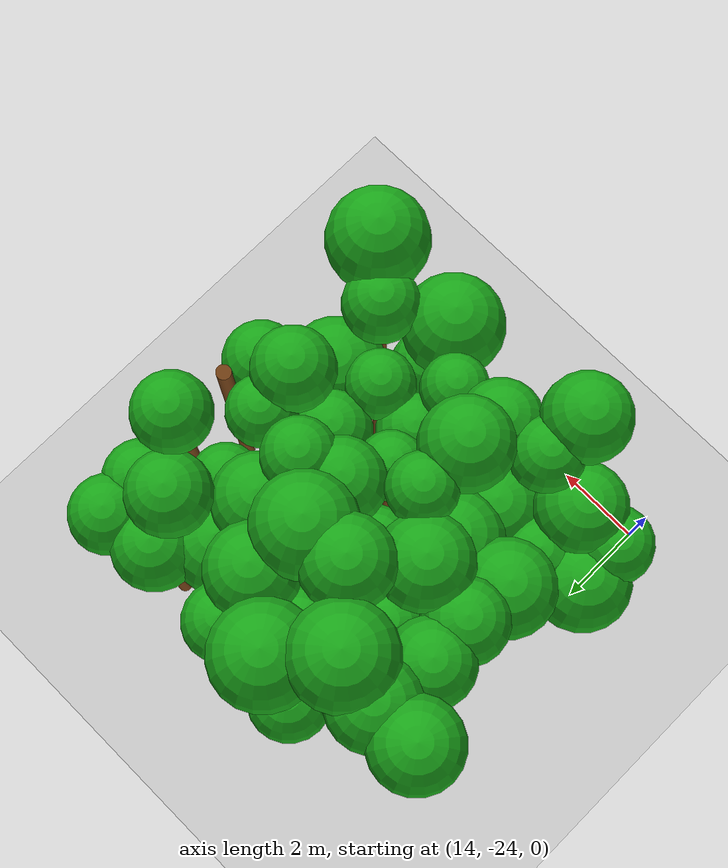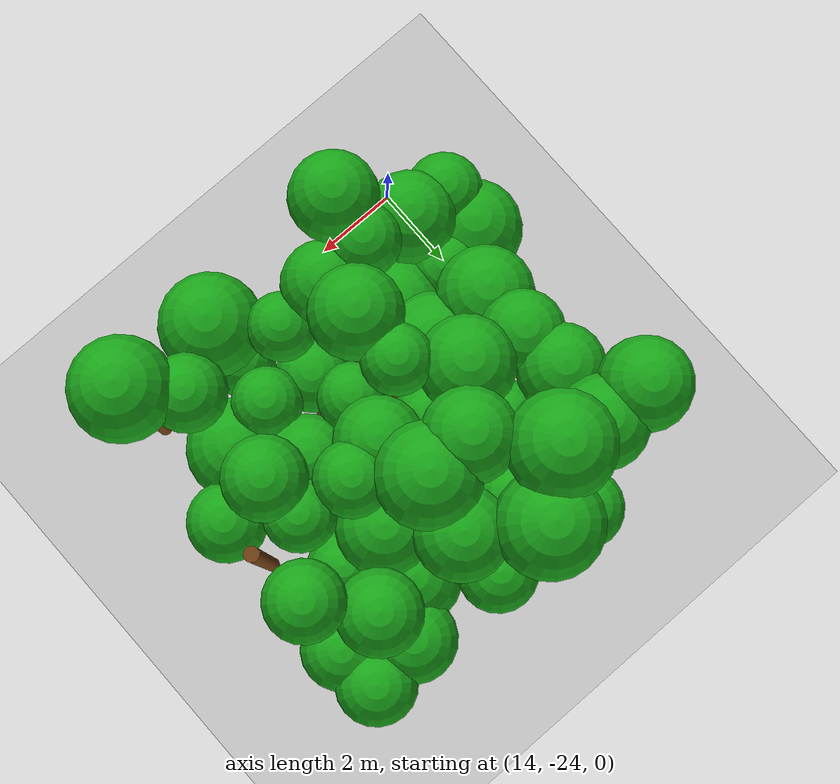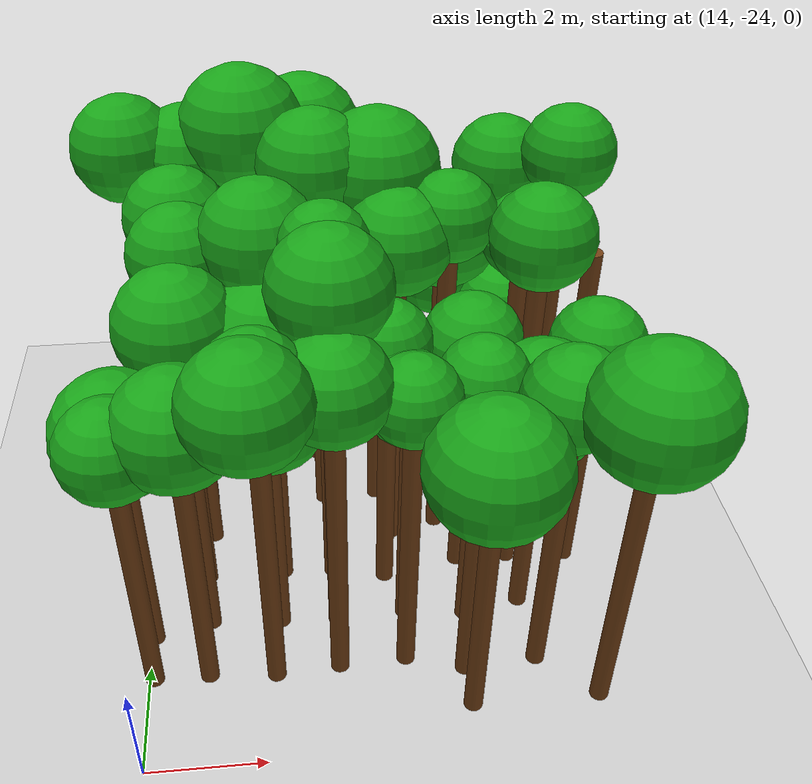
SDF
<sdf version="1.6">
 <world name="forest_world">
  <include><uri>model://sun</uri></include>
  <include><uri>model://ground_plane</uri></include>
  <model name="tree_2184_trunk">
   <static>true</static>
   <pose>14.08 -22.23 2.40 0 0 0</pose>
   <link name="link">
    <collision name="collision">
     <geometry><cylinder><radius>0.16</radius><length>4.79</length></cylinder></geometry>
    </collision>
    <visual name="visual">
     <geometry><cylinder><radius>0.16</radius><length>4.79</length></cylinder></geometry>
     <material><ambient>0.35 0.20 0.05 1</ambient><diffuse>0.45 0.25 0.08 1</diffuse></material>
    </visual>
   </link>
  </model>
  <model name="tree_2184_leaf">
   <static>true</static>
   <pose>14.08 -22.23 5.28 0 0 0</pose>
   <link name="link">
    <collision name="collision"><geometry><sphere><radius>0.81</radius></sphere></geometry></collision>
    <visual name="visual">
     <geometry><sphere><radius>0.81</radius></sphere></geometry>
     <material><ambient>0.05 0.45 0.05 1</ambient><diffuse>0.10 0.65 0.10 1</diffuse></material>
    </visual>
   </link>
  </model>
  <model name="tree_2185_trunk">
   <static>true</static>
   <pose>14.04 -21.34 2.10 0 0 0</pose>
   <link name="link">
    <collision name="collision">
     <geometry><cylinder><radius>0.16</radius><length>4.21</length></cylinder></geometry>
    </collision>
    <visual name="visual">
     <geometry><cylinder><radius>0.16</radius><length>4.21</length></cylinder></geometry>
     <material><ambient>0.35 0.20 0.05 1</ambient><diffuse>0.45 0.25 0.08 1</diffuse></material>
    </visual>
   </link>
  </model>
  <model name="tree_2185_leaf">
   <static>true</static>
   <pose>14.04 -21.34 4.82 0 0 0</pose>
   <link name="link">
    <collision name="collision"><geometry><sphere><radius>1.03</radius></sphere></geometry></collision>
    <visual name="visual">
     <geometry><sphere><radius>1.03</radius></sphere></geometry>
     <material><ambient>0.05 0.45 0.05 1</ambient><diffuse>0.10 0.65 0.10 1</diffuse></material>
    </visual>
   </link>
  </model>
  <model name="tree_2189_trunk">
   <static>true</static>
   <pose>14.11 -16.63 3.33 0 0 0</pose>
   <link name="link">
    <collision name="collision">
     <geometry><cylinder><radius>0.16</radius><length>6.65</length></cylinder></geometry>
    </collision>
    <visual name="visual">
     <geometry><cylinder><radius>0.16</radius><length>6.65</length></cylinder></geometry>
     <material><ambient>0.35 0.20 0.05 1</ambient><diffuse>0.45 0.25 0.08 1</diffuse></material>
    </visual>
   </link>
  </model>
  <model name="tree_2189_leaf">
   <static>true</static>
   <pose>14.11 -16.63 7.21 0 0 0</pose>
   <link name="link">
    <collision name="collision"><geometry><sphere><radius>0.93</radius></sphere></geometry></collision>
    <visual name="visual">
     <geometry><sphere><radius>0.93</radius></sphere></geometry>
     <material><ambient>0.05 0.45 0.05 1</ambient><diffuse>0.10 0.65 0.10 1</diffuse></material>
    </visual>
   </link>
  </model>
  <model name="tree_2239_trunk">
   <static>true</static>
   <pose>15.02 -22.23 2.52 0 0 0</pose>
   <link name="link">
    <collision name="collision">
     <geometry><cylinder><radius>0.16</radius><length>5.04</length></cylinder></geometry>
    </collision>
    <visual name="visual">
     <geometry><cylinder><radius>0.16</radius><length>5.04</length></cylinder></geometry>
     <material><ambient>0.35 0.20 0.05 1</ambient><diffuse>0.45 0.25 0.08 1</diffuse></material>
    </visual>
   </link>
  </model>
  <model name="tree_2239_leaf">
   <static>true</static>
   <pose>15.02 -22.23 5.61 0 0 0</pose>
   <link name="link">
    <collision name="collision"><geometry><sphere><radius>0.95</radius></sphere></geometry></collision>
    <visual name="visual">
     <geometry><sphere><radius>0.95</radius></sphere></geometry>
     <material><ambient>0.05 0.45 0.05 1</ambient><diffuse>0.10 0.65 0.10 1</diffuse></material>
    </visual>
   </link>
  </model>
  <model name="tree_2240_trunk">
   <static>true</static>
   <pose>15.04 -21.08 2.26 0 0 0</pose>
   <link name="link">
    <collision name="collision">
     <geometry><cylinder><radius>0.16</radius><length>4.52</length></cylinder></geometry>
    </collision>
    <visual name="visual">
     <geometry><cylinder><radius>0.16</radius><length>4.52</length></cylinder></geometry>
     <material><ambient>0.35 0.20 0.05 1</ambient><diffuse>0.45 0.25 0.08 1</diffuse></material>
    </visual>
   </link>
  </model>
  <model name="tree_2240_leaf">
   <static>true</static>
   <pose>15.04 -21.08 5.01 0 0 0</pose>
   <link name="link">
    <collision name="collision"><geometry><sphere><radius>0.81</radius></sphere></geometry></collision>
    <visual name="visual">
     <geometry><sphere><radius>0.81</radius></sphere></geometry>
     <material><ambient>0.05 0.45 0.05 1</ambient><diffuse>0.10 0.65 0.10 1</diffuse></material>
    </visual>
   </link>
  </model>
  <model name="tree_2241_trunk">
   <static>true</static>
   <pose>14.96 -20.02 2.61 0 0 0</pose>
   <link name="link">
    <collision name="collision">
     <geometry><cylinder><radius>0.16</radius><length>5.22</length></cylinder></geometry>
    </collision>
    <visual name="visual">
     <geometry><cylinder><radius>0.16</radius><length>5.22</length></cylinder></geometry>
     <material><ambient>0.35 0.20 0.05 1</ambient><diffuse>0.45 0.25 0.08 1</diffuse></material>
    </visual>
   </link>
  </model>
  <model name="tree_2241_leaf">
   <static>true</static>
   <pose>14.96 -20.02 5.82 0 0 0</pose>
   <link name="link">
    <collision name="collision"><geometry><sphere><radius>1.00</radius></sphere></geometry></collision>
    <visual name="visual">
     <geometry><sphere><radius>1.00</radius></sphere></geometry>
     <material><ambient>0.05 0.45 0.05 1</ambient><diffuse>0.10 0.65 0.10 1</diffuse></material>
    </visual>
   </link>
  </model>
  <model name="tree_2242_trunk">
   <static>true</static>
   <pose>15.05 -18.93 2.95 0 0 0</pose>
   <link name="link">
    <collision name="collision">
     <geometry><cylinder><radius>0.16</radius><length>5.90</length></cylinder></geometry>
    </collision>
    <visual name="visual">
     <geometry><cylinder><radius>0.16</radius><length>5.90</length></cylinder></geometry>
     <material><ambient>0.35 0.20 0.05 1</ambient><diffuse>0.45 0.25 0.08 1</diffuse></material>
    </visual>
   </link>
  </model>
  <model name="tree_2242_leaf">
   <static>true</static>
   <pose>15.05 -18.93 6.42 0 0 0</pose>
   <link name="link">
    <collision name="collision"><geometry><sphere><radius>0.87</radius></sphere></geometry></collision>
    <visual name="visual">
     <geometry><sphere><radius>0.87</radius></sphere></geometry>
     <material><ambient>0.05 0.45 0.05 1</ambient><diffuse>0.10 0.65 0.10 1</diffuse></material>
    </visual>
   </link>
  </model>
  <model name="tree_2243_trunk">
   <static>true</static>
   <pose>14.96 -17.92 3.01 0 0 0</pose>
   <link name="link">
    <collision name="collision">
     <geometry><cylinder><radius>0.16</radius><length>6.01</length></cylinder></geometry>
    </collision>
    <visual name="visual">
     <geometry><cylinder><radius>0.16</radius><length>6.01</length></cylinder></geometry>
     <material><ambient>0.35 0.20 0.05 1</ambient><diffuse>0.45 0.25 0.08 1</diffuse></material>
    </visual>
   </link>
  </model>
  <model name="tree_2243_leaf">
   <static>true</static>
   <pose>14.96 -17.92 6.54 0 0 0</pose>
   <link name="link">
    <collision name="collision"><geometry><sphere><radius>0.89</radius></sphere></geometry></collision>
    <visual name="visual">
     <geometry><sphere><radius>0.89</radius></sphere></geometry>
     <material><ambient>0.05 0.45 0.05 1</ambient><diffuse>0.10 0.65 0.10 1</diffuse></material>
    </visual>
   </link>
  </model>
  <model name="tree_2244_trunk">
   <static>true</static>
   <pose>15.16 -16.63 3.22 0 0 0</pose>
   <link name="link">
    <collision name="collision">
     <geometry><cylinder><radius>0.16</radius><length>6.44</length></cylinder></geometry>
    </collision>
    <visual name="visual">
     <geometry><cylinder><radius>0.16</radius><length>6.44</length></cylinder></geometry>
     <material><ambient>0.35 0.20 0.05 1</ambient><diffuse>0.45 0.25 0.08 1</diffuse></material>
    </visual>
   </link>
  </model>
  <model name="tree_2244_leaf">
   <static>true</static>
   <pose>15.16 -16.63 7.00 0 0 0</pose>
   <link name="link">
    <collision name="collision"><geometry><sphere><radius>0.94</radius></sphere></geometry></collision>
    <visual name="visual">
     <geometry><sphere><radius>0.94</radius></sphere></geometry>
     <material><ambient>0.05 0.45 0.05 1</ambient><diffuse>0.10 0.65 0.10 1</diffuse></material>
    </visual>
   </link>
  </model>
  <model name="tree_2293_leaf">
   <static>true</static>
   <pose>16.09 -23.28 6.79 0 0 0</pose>
   <link name="link">
    <collision name="collision"><geometry><sphere><radius>0.91</radius></sphere></geometry></collision>
    <visual name="visual">
     <geometry><sphere><radius>0.91</radius></sphere></geometry>
     <material><ambient>0.05 0.45 0.05 1</ambient><diffuse>0.10 0.65 0.10 1</diffuse></material>
    </visual>
   </link>
  </model>
  <model name="tree_2294_trunk">
   <static>true</static>
   <pose>16.17 -22.32 3.00 0 0 0</pose>
   <link name="link">
    <collision name="collision">
     <geometry><cylinder><radius>0.16</radius><length>5.99</length></cylinder></geometry>
    </collision>
    <visual name="visual">
     <geometry><cylinder><radius>0.16</radius><length>5.99</length></cylinder></geometry>
     <material><ambient>0.35 0.20 0.05 1</ambient><diffuse>0.45 0.25 0.08 1</diffuse></material>
    </visual>
   </link>
  </model>
  <model name="tree_2294_leaf">
   <static>true</static>
   <pose>16.17 -22.32 6.45 0 0 0</pose>
   <link name="link">
    <collision name="collision"><geometry><sphere><radius>0.76</radius></sphere></geometry></collision>
    <visual name="visual">
     <geometry><sphere><radius>0.76</radius></sphere></geometry>
     <material><ambient>0.05 0.45 0.05 1</ambient><diffuse>0.10 0.65 0.10 1</diffuse></material>
    </visual>
   </link>
  </model>
  <model name="tree_2295_trunk">
   <static>true</static>
   <pose>16.29 -21.16 2.17 0 0 0</pose>
   <link name="link">
    <collision name="collision">
     <geometry><cylinder><radius>0.16</radius><length>4.34</length></cylinder></geometry>
    </collision>
    <visual name="visual">
     <geometry><cylinder><radius>0.16</radius><length>4.34</length></cylinder></geometry>
     <material><ambient>0.35 0.20 0.05 1</ambient><diffuse>0.45 0.25 0.08 1</diffuse></material>
    </visual>
   </link>
  </model>
  <model name="tree_2295_leaf">
   <static>true</static>
   <pose>16.29 -21.16 4.94 0 0 0</pose>
   <link name="link">
    <collision name="collision"><geometry><sphere><radius>0.99</radius></sphere></geometry></collision>
    <visual name="visual">
     <geometry><sphere><radius>0.99</radius></sphere></geometry>
     <material><ambient>0.05 0.45 0.05 1</ambient><diffuse>0.10 0.65 0.10 1</diffuse></material>
    </visual>
   </link>
  </model>
  <model name="tree_2296_trunk">
   <static>true</static>
   <pose>16.38 -19.99 2.39 0 0 0</pose>
   <link name="link">
    <collision name="collision">
     <geometry><cylinder><radius>0.16</radius><length>4.78</length></cylinder></geometry>
    </collision>
    <visual name="visual">
     <geometry><cylinder><radius>0.16</radius><length>4.78</length></cylinder></geometry>
     <material><ambient>0.35 0.20 0.05 1</ambient><diffuse>0.45 0.25 0.08 1</diffuse></material>
    </visual>
   </link>
  </model>
  <model name="tree_2296_leaf">
   <static>true</static>
   <pose>16.38 -19.99 5.44 0 0 0</pose>
   <link name="link">
    <collision name="collision"><geometry><sphere><radius>1.10</radius></sphere></geometry></collision>
    <visual name="visual">
     <geometry><sphere><radius>1.10</radius></sphere></geometry>
     <material><ambient>0.05 0.45 0.05 1</ambient><diffuse>0.10 0.65 0.10 1</diffuse></material>
    </visual>
   </link>
  </model>
  <model name="tree_2297_trunk">
   <static>true</static>
   <pose>16.32 -19.14 3.11 0 0 0</pose>
   <link name="link">
    <collision name="collision">
     <geometry><cylinder><radius>0.16</radius><length>6.23</length></cylinder></geometry>
    </collision>
    <visual name="visual">
     <geometry><cylinder><radius>0.16</radius><length>6.23</length></cylinder></geometry>
     <material><ambient>0.35 0.20 0.05 1</ambient><diffuse>0.45 0.25 0.08 1</diffuse></material>
    </visual>
   </link>
  </model>
  <model name="tree_2297_leaf">
   <static>true</static>
   <pose>16.32 -19.14 6.81 0 0 0</pose>
   <link name="link">
    <collision name="collision"><geometry><sphere><radius>0.97</radius></sphere></geometry></collision>
    <visual name="visual">
     <geometry><sphere><radius>0.97</radius></sphere></geometry>
     <material><ambient>0.05 0.45 0.05 1</ambient><diffuse>0.10 0.65 0.10 1</diffuse></material>
    </visual>
   </link>
  </model>
  <model name="tree_2298_trunk">
   <static>true</static>
   <pose>16.19 -18.02 2.06 0 0 0</pose>
   <link name="link">
    <collision name="collision">
     <geometry><cylinder><radius>0.16</radius><length>4.12</length></cylinder></geometry>
    </collision>
    <visual name="visual">
     <geometry><cylinder><radius>0.16</radius><length>4.12</length></cylinder></geometry>
     <material><ambient>0.35 0.20 0.05 1</ambient><diffuse>0.45 0.25 0.08 1</diffuse></material>
    </visual>
   </link>
  </model>
  <model name="tree_2298_leaf">
   <static>true</static>
   <pose>16.19 -18.02 4.64 0 0 0</pose>
   <link name="link">
    <collision name="collision"><geometry><sphere><radius>0.85</radius></sphere></geometry></collision>
    <visual name="visual">
     <geometry><sphere><radius>0.85</radius></sphere></geometry>
     <material><ambient>0.05 0.45 0.05 1</ambient><diffuse>0.10 0.65 0.10 1</diffuse></material>
    </visual>
   </link>
  </model>
  <model name="tree_2299_trunk">
   <static>true</static>
   <pose>16.12 -16.80 3.48 0 0 0</pose>
   <link name="link">
    <collision name="collision">
     <geometry><cylinder><radius>0.16</radius><length>6.95</length></cylinder></geometry>
    </collision>
    <visual name="visual">
     <geometry><cylinder><radius>0.16</radius><length>6.95</length></cylinder></geometry>
     <material><ambient>0.35 0.20 0.05 1</ambient><diffuse>0.45 0.25 0.08 1</diffuse></material>
    </visual>
   </link>
  </model>
  <model name="tree_2299_leaf">
   <static>true</static>
   <pose>16.12 -16.80 7.59 0 0 0</pose>
   <link name="link">
    <collision name="collision"><geometry><sphere><radius>1.07</radius></sphere></geometry></collision>
    <visual name="visual">
     <geometry><sphere><radius>1.07</radius></sphere></geometry>
     <material><ambient>0.05 0.45 0.05 1</ambient><diffuse>0.10 0.65 0.10 1</diffuse></material>
    </visual>
   </link>
  </model>
  <model name="tree_2300_trunk">
   <static>true</static>
   <pose>16.36 -15.62 2.78 0 0 0</pose>
   <link name="link">
    <collision name="collision">
     <geometry><cylinder><radius>0.16</radius><length>5.55</length></cylinder></geometry>
    </collision>
    <visual name="visual">
     <geometry><cylinder><radius>0.16</radius><length>5.55</length></cylinder></geometry>
     <material><ambient>0.35 0.20 0.05 1</ambient><diffuse>0.45 0.25 0.08 1</diffuse></material>
    </visual>
   </link>
  </model>
  <model name="tree_2300_leaf">
   <static>true</static>
   <pose>16.36 -15.62 6.04 0 0 0</pose>
   <link name="link">
    <collision name="collision"><geometry><sphere><radius>0.81</radius></sphere></geometry></collision>
    <visual name="visual">
     <geometry><sphere><radius>0.81</radius></sphere></geometry>
     <material><ambient>0.05 0.45 0.05 1</ambient><diffuse>0.10 0.65 0.10 1</diffuse></material>
    </visual>
   </link>
  </model>
  <model name="tree_2349_trunk">
   <static>true</static>
   <pose>17.27 -22.23 2.82 0 0 0</pose>
   <link name="link">
    <collision name="collision">
     <geometry><cylinder><radius>0.16</radius><length>5.64</length></cylinder></geometry>
    </collision>
    <visual name="visual">
     <geometry><cylinder><radius>0.16</radius><length>5.64</length></cylinder></geometry>
     <material><ambient>0.35 0.20 0.05 1</ambient><diffuse>0.45 0.25 0.08 1</diffuse></material>
    </visual>
   </link>
  </model>
  <model name="tree_2349_leaf">
   <static>true</static>
   <pose>17.27 -22.23 6.16 0 0 0</pose>
   <link name="link">
    <collision name="collision"><geometry><sphere><radius>0.87</radius></sphere></geometry></collision>
    <visual name="visual">
     <geometry><sphere><radius>0.87</radius></sphere></geometry>
     <material><ambient>0.05 0.45 0.05 1</ambient><diffuse>0.10 0.65 0.10 1</diffuse></material>
    </visual>
   </link>
  </model>
  <model name="tree_2350_trunk">
   <static>true</static>
   <pose>17.30 -21.22 3.29 0 0 0</pose>
   <link name="link">
    <collision name="collision">
     <geometry><cylinder><radius>0.16</radius><length>6.58</length></cylinder></geometry>
    </collision>
    <visual name="visual">
     <geometry><cylinder><radius>0.16</radius><length>6.58</length></cylinder></geometry>
     <material><ambient>0.35 0.20 0.05 1</ambient><diffuse>0.45 0.25 0.08 1</diffuse></material>
    </visual>
   </link>
  </model>
  <model name="tree_2350_leaf">
   <static>true</static>
   <pose>17.30 -21.22 7.15 0 0 0</pose>
   <link name="link">
    <collision name="collision"><geometry><sphere><radius>0.94</radius></sphere></geometry></collision>
    <visual name="visual">
     <geometry><sphere><radius>0.94</radius></sphere></geometry>
     <material><ambient>0.05 0.45 0.05 1</ambient><diffuse>0.10 0.65 0.10 1</diffuse></material>
    </visual>
   </link>
  </model>
  <model name="tree_2351_trunk">
   <static>true</static>
   <pose>17.30 -20.04 3.34 0 0 0</pose>
   <link name="link">
    <collision name="collision">
     <geometry><cylinder><radius>0.16</radius><length>6.69</length></cylinder></geometry>
    </collision>
    <visual name="visual">
     <geometry><cylinder><radius>0.16</radius><length>6.69</length></cylinder></geometry>
     <material><ambient>0.35 0.20 0.05 1</ambient><diffuse>0.45 0.25 0.08 1</diffuse></material>
    </visual>
   </link>
  </model>
  <model name="tree_2351_leaf">
   <static>true</static>
   <pose>17.30 -20.04 7.12 0 0 0</pose>
   <link name="link">
    <collision name="collision"><geometry><sphere><radius>0.71</radius></sphere></geometry></collision>
    <visual name="visual">
     <geometry><sphere><radius>0.71</radius></sphere></geometry>
     <material><ambient>0.05 0.45 0.05 1</ambient><diffuse>0.10 0.65 0.10 1</diffuse></material>
    </visual>
   </link>
  </model>
  <model name="tree_2352_trunk">
   <static>true</static>
   <pose>17.37 -18.93 2.55 0 0 0</pose>
   <link name="link">
    <collision name="collision">
     <geometry><cylinder><radius>0.16</radius><length>5.11</length></cylinder></geometry>
    </collision>
    <visual name="visual">
     <geometry><cylinder><radius>0.16</radius><length>5.11</length></cylinder></geometry>
     <material><ambient>0.35 0.20 0.05 1</ambient><diffuse>0.45 0.25 0.08 1</diffuse></material>
    </visual>
   </link>
  </model>
  <model name="tree_2352_leaf">
   <static>true</static>
   <pose>17.37 -18.93 5.56 0 0 0</pose>
   <link name="link">
    <collision name="collision"><geometry><sphere><radius>0.75</radius></sphere></geometry></collision>
    <visual name="visual">
     <geometry><sphere><radius>0.75</radius></sphere></geometry>
     <material><ambient>0.05 0.45 0.05 1</ambient><diffuse>0.10 0.65 0.10 1</diffuse></material>
    </visual>
   </link>
  </model>
  <model name="tree_2353_trunk">
   <static>true</static>
   <pose>17.26 -18.05 3.45 0 0 0</pose>
   <link name="link">
    <collision name="collision">
     <geometry><cylinder><radius>0.16</radius><length>6.90</length></cylinder></geometry>
    </collision>
    <visual name="visual">
     <geometry><cylinder><radius>0.16</radius><length>6.90</length></cylinder></geometry>
     <material><ambient>0.35 0.20 0.05 1</ambient><diffuse>0.45 0.25 0.08 1</diffuse></material>
    </visual>
   </link>
  </model>
  <model name="tree_2353_leaf">
   <static>true</static>
   <pose>17.26 -18.05 7.46 0 0 0</pose>
   <link name="link">
    <collision name="collision"><geometry><sphere><radius>0.94</radius></sphere></geometry></collision>
    <visual name="visual">
     <geometry><sphere><radius>0.94</radius></sphere></geometry>
     <material><ambient>0.05 0.45 0.05 1</ambient><diffuse>0.10 0.65 0.10 1</diffuse></material>
    </visual>
   </link>
  </model>
  <model name="tree_2354_trunk">
   <static>true</static>
   <pose>17.21 -16.71 2.71 0 0 0</pose>
   <link name="link">
    <collision name="collision">
     <geometry><cylinder><radius>0.16</radius><length>5.43</length></cylinder></geometry>
    </collision>
    <visual name="visual">
     <geometry><cylinder><radius>0.16</radius><length>5.43</length></cylinder></geometry>
     <material><ambient>0.35 0.20 0.05 1</ambient><diffuse>0.45 0.25 0.08 1</diffuse></material>
    </visual>
   </link>
  </model>
  <model name="tree_2354_leaf">
   <static>true</static>
   <pose>17.21 -16.71 5.91 0 0 0</pose>
   <link name="link">
    <collision name="collision"><geometry><sphere><radius>0.80</radius></sphere></geometry></collision>
    <visual name="visual">
     <geometry><sphere><radius>0.80</radius></sphere></geometry>
     <material><ambient>0.05 0.45 0.05 1</ambient><diffuse>0.10 0.65 0.10 1</diffuse></material>
    </visual>
   </link>
  </model>
  <model name="tree_2355_trunk">
   <static>true</static>
   <pose>17.18 -15.84 3.18 0 0 0</pose>
   <link name="link">
    <collision name="collision">
     <geometry><cylinder><radius>0.16</radius><length>6.35</length></cylinder></geometry>
    </collision>
    <visual name="visual">
     <geometry><cylinder><radius>0.16</radius><length>6.35</length></cylinder></geometry>
     <material><ambient>0.35 0.20 0.05 1</ambient><diffuse>0.45 0.25 0.08 1</diffuse></material>
    </visual>
   </link>
  </model>
  <model name="tree_2355_leaf">
   <static>true</static>
   <pose>17.18 -15.84 7.00 0 0 0</pose>
   <link name="link">
    <collision name="collision"><geometry><sphere><radius>1.08</radius></sphere></geometry></collision>
    <visual name="visual">
     <geometry><sphere><radius>1.08</radius></sphere></geometry>
     <material><ambient>0.05 0.45 0.05 1</ambient><diffuse>0.10 0.65 0.10 1</diffuse></material>
    </visual>
   </link>
  </model>
  <model name="tree_2404_trunk">
   <static>true</static>
   <pose>18.42 -22.18 2.70 0 0 0</pose>
   <link name="link">
    <collision name="collision">
     <geometry><cylinder><radius>0.16</radius><length>5.40</length></cylinder></geometry>
    </collision>
    <visual name="visual">
     <geometry><cylinder><radius>0.16</radius><length>5.40</length></cylinder></geometry>
     <material><ambient>0.35 0.20 0.05 1</ambient><diffuse>0.45 0.25 0.08 1</diffuse></material>
    </visual>
   </link>
  </model>
  <model name="tree_2404_leaf">
   <static>true</static>
   <pose>18.42 -22.18 5.82 0 0 0</pose>
   <link name="link">
    <collision name="collision"><geometry><sphere><radius>0.71</radius></sphere></geometry></collision>
    <visual name="visual">
     <geometry><sphere><radius>0.71</radius></sphere></geometry>
     <material><ambient>0.05 0.45 0.05 1</ambient><diffuse>0.10 0.65 0.10 1</diffuse></material>
    </visual>
   </link>
  </model>
  <model name="tree_2405_trunk">
   <static>true</static>
   <pose>18.52 -21.16 2.28 0 0 0</pose>
   <link name="link">
    <collision name="collision">
     <geometry><cylinder><radius>0.16</radius><length>4.56</length></cylinder></geometry>
    </collision>
    <visual name="visual">
     <geometry><cylinder><radius>0.16</radius><length>4.56</length></cylinder></geometry>
     <material><ambient>0.35 0.20 0.05 1</ambient><diffuse>0.45 0.25 0.08 1</diffuse></material>
    </visual>
   </link>
  </model>
  <model name="tree_2405_leaf">
   <static>true</static>
   <pose>18.52 -21.16 5.02 0 0 0</pose>
   <link name="link">
    <collision name="collision"><geometry><sphere><radius>0.78</radius></sphere></geometry></collision>
    <visual name="visual">
     <geometry><sphere><radius>0.78</radius></sphere></geometry>
     <material><ambient>0.05 0.45 0.05 1</ambient><diffuse>0.10 0.65 0.10 1</diffuse></material>
    </visual>
   </link>
  </model>
  <model name="tree_2406_trunk">
   <static>true</static>
   <pose>18.26 -20.25 2.51 0 0 0</pose>
   <link name="link">
    <collision name="collision">
     <geometry><cylinder><radius>0.16</radius><length>5.02</length></cylinder></geometry>
    </collision>
    <visual name="visual">
     <geometry><cylinder><radius>0.16</radius><length>5.02</length></cylinder></geometry>
     <material><ambient>0.35 0.20 0.05 1</ambient><diffuse>0.45 0.25 0.08 1</diffuse></material>
    </visual>
   </link>
  </model>
  <model name="tree_2406_leaf">
   <static>true</static>
   <pose>18.26 -20.25 5.45 0 0 0</pose>
   <link name="link">
    <collision name="collision"><geometry><sphere><radius>0.72</radius></sphere></geometry></collision>
    <visual name="visual">
     <geometry><sphere><radius>0.72</radius></sphere></geometry>
     <material><ambient>0.05 0.45 0.05 1</ambient><diffuse>0.10 0.65 0.10 1</diffuse></material>
    </visual>
   </link>
  </model>
  <model name="tree_2407_trunk">
   <static>true</static>
   <pose>18.53 -19.15 3.04 0 0 0</pose>
   <link name="link">
    <collision name="collision">
     <geometry><cylinder><radius>0.16</radius><length>6.08</length></cylinder></geometry>
    </collision>
    <visual name="visual">
     <geometry><cylinder><radius>0.16</radius><length>6.08</length></cylinder></geometry>
     <material><ambient>0.35 0.20 0.05 1</ambient><diffuse>0.45 0.25 0.08 1</diffuse></material>
    </visual>
   </link>
  </model>
  <model name="tree_2407_leaf">
   <static>true</static>
   <pose>18.53 -19.15 6.62 0 0 0</pose>
   <link name="link">
    <collision name="collision"><geometry><sphere><radius>0.89</radius></sphere></geometry></collision>
    <visual name="visual">
     <geometry><sphere><radius>0.89</radius></sphere></geometry>
     <material><ambient>0.05 0.45 0.05 1</ambient><diffuse>0.10 0.65 0.10 1</diffuse></material>
    </visual>
   </link>
  </model>
  <model name="tree_2408_trunk">
   <static>true</static>
   <pose>18.31 -18.00 3.33 0 0 0</pose>
   <link name="link">
    <collision name="collision">
     <geometry><cylinder><radius>0.16</radius><length>6.67</length></cylinder></geometry>
    </collision>
    <visual name="visual">
     <geometry><cylinder><radius>0.16</radius><length>6.67</length></cylinder></geometry>
     <material><ambient>0.35 0.20 0.05 1</ambient><diffuse>0.45 0.25 0.08 1</diffuse></material>
    </visual>
   </link>
  </model>
  <model name="tree_2408_leaf">
   <static>true</static>
   <pose>18.31 -18.00 7.30 0 0 0</pose>
   <link name="link">
    <collision name="collision"><geometry><sphere><radius>1.05</radius></sphere></geometry></collision>
    <visual name="visual">
     <geometry><sphere><radius>1.05</radius></sphere></geometry>
     <material><ambient>0.05 0.45 0.05 1</ambient><diffuse>0.10 0.65 0.10 1</diffuse></material>
    </visual>
   </link>
  </model>
  <model name="tree_2409_trunk">
   <static>true</static>
   <pose>18.50 -16.79 3.03 0 0 0</pose>
   <link name="link">
    <collision name="collision">
     <geometry><cylinder><radius>0.16</radius><length>6.06</length></cylinder></geometry>
    </collision>
    <visual name="visual">
     <geometry><cylinder><radius>0.16</radius><length>6.06</length></cylinder></geometry>
     <material><ambient>0.35 0.20 0.05 1</ambient><diffuse>0.45 0.25 0.08 1</diffuse></material>
    </visual>
   </link>
  </model>
  <model name="tree_2409_leaf">
   <static>true</static>
   <pose>18.50 -16.79 6.63 0 0 0</pose>
   <link name="link">
    <collision name="collision"><geometry><sphere><radius>0.95</radius></sphere></geometry></collision>
    <visual name="visual">
     <geometry><sphere><radius>0.95</radius></sphere></geometry>
     <material><ambient>0.05 0.45 0.05 1</ambient><diffuse>0.10 0.65 0.10 1</diffuse></material>
    </visual>
   </link>
  </model>
  <model name="tree_2410_trunk">
   <static>true</static>
   <pose>18.38 -15.76 2.54 0 0 0</pose>
   <link name="link">
    <collision name="collision">
     <geometry><cylinder><radius>0.16</radius><length>5.07</length></cylinder></geometry>
    </collision>
    <visual name="visual">
     <geometry><cylinder><radius>0.16</radius><length>5.07</length></cylinder></geometry>
     <material><ambient>0.35 0.20 0.05 1</ambient><diffuse>0.45 0.25 0.08 1</diffuse></material>
    </visual>
   </link>
  </model>
  <model name="tree_2410_leaf">
   <static>true</static>
   <pose>18.38 -15.76 5.56 0 0 0</pose>
   <link name="link">
    <collision name="collision"><geometry><sphere><radius>0.81</radius></sphere></geometry></collision>
    <visual name="visual">
     <geometry><sphere><radius>0.81</radius></sphere></geometry>
     <material><ambient>0.05 0.45 0.05 1</ambient><diffuse>0.10 0.65 0.10 1</diffuse></material>
    </visual>
   </link>
  </model>
  <model name="tree_2458_trunk">
   <static>true</static>
   <pose>19.44 -23.22 2.36 0 0 0</pose>
   <link name="link">
    <collision name="collision">
     <geometry><cylinder><radius>0.16</radius><length>4.72</length></cylinder></geometry>
    </collision>
    <visual name="visual">
     <geometry><cylinder><radius>0.16</radius><length>4.72</length></cylinder></geometry>
     <material><ambient>0.35 0.20 0.05 1</ambient><diffuse>0.45 0.25 0.08 1</diffuse></material>
    </visual>
   </link>
  </model>
  <model name="tree_2458_leaf">
   <static>true</static>
   <pose>19.44 -23.22 5.37 0 0 0</pose>
   <link name="link">
    <collision name="collision"><geometry><sphere><radius>1.08</radius></sphere></geometry></collision>
    <visual name="visual">
     <geometry><sphere><radius>1.08</radius></sphere></geometry>
     <material><ambient>0.05 0.45 0.05 1</ambient><diffuse>0.10 0.65 0.10 1</diffuse></material>
    </visual>
   </link>
  </model>
  <model name="tree_2459_trunk">
   <static>true</static>
   <pose>19.41 -22.48 2.00 0 0 0</pose>
   <link name="link">
    <collision name="collision">
     <geometry><cylinder><radius>0.16</radius><length>4.00</length></cylinder></geometry>
    </collision>
    <visual name="visual">
     <geometry><cylinder><radius>0.16</radius><length>4.00</length></cylinder></geometry>
     <material><ambient>0.35 0.20 0.05 1</ambient><diffuse>0.45 0.25 0.08 1</diffuse></material>
    </visual>
   </link>
  </model>
  <model name="tree_2459_leaf">
   <static>true</static>
   <pose>19.41 -22.48 4.46 0 0 0</pose>
   <link name="link">
    <collision name="collision"><geometry><sphere><radius>0.76</radius></sphere></geometry></collision>
    <visual name="visual">
     <geometry><sphere><radius>0.76</radius></sphere></geometry>
     <material><ambient>0.05 0.45 0.05 1</ambient><diffuse>0.10 0.65 0.10 1</diffuse></material>
    </visual>
   </link>
  </model>
  <model name="tree_2460_trunk">
   <static>true</static>
   <pose>19.60 -21.29 2.48 0 0 0</pose>
   <link name="link">
    <collision name="collision">
     <geometry><cylinder><radius>0.16</radius><length>4.96</length></cylinder></geometry>
    </collision>
    <visual name="visual">
     <geometry><cylinder><radius>0.16</radius><length>4.96</length></cylinder></geometry>
     <material><ambient>0.35 0.20 0.05 1</ambient><diffuse>0.45 0.25 0.08 1</diffuse></material>
    </visual>
   </link>
  </model>
  <model name="tree_2460_leaf">
   <static>true</static>
   <pose>19.60 -21.29 5.40 0 0 0</pose>
   <link name="link">
    <collision name="collision"><geometry><sphere><radius>0.73</radius></sphere></geometry></collision>
    <visual name="visual">
     <geometry><sphere><radius>0.73</radius></sphere></geometry>
     <material><ambient>0.05 0.45 0.05 1</ambient><diffuse>0.10 0.65 0.10 1</diffuse></material>
    </visual>
   </link>
  </model>
  <model name="tree_2461_trunk">
   <static>true</static>
   <pose>19.67 -19.97 2.32 0 0 0</pose>
   <link name="link">
    <collision name="collision">
     <geometry><cylinder><radius>0.16</radius><length>4.64</length></cylinder></geometry>
    </collision>
    <visual name="visual">
     <geometry><cylinder><radius>0.16</radius><length>4.64</length></cylinder></geometry>
     <material><ambient>0.35 0.20 0.05 1</ambient><diffuse>0.45 0.25 0.08 1</diffuse></material>
    </visual>
   </link>
  </model>
  <model name="tree_2461_leaf">
   <static>true</static>
   <pose>19.67 -19.97 5.15 0 0 0</pose>
   <link name="link">
    <collision name="collision"><geometry><sphere><radius>0.85</radius></sphere></geometry></collision>
    <visual name="visual">
     <geometry><sphere><radius>0.85</radius></sphere></geometry>
     <material><ambient>0.05 0.45 0.05 1</ambient><diffuse>0.10 0.65 0.10 1</diffuse></material>
    </visual>
   </link>
  </model>
  <model name="tree_2462_trunk">
   <static>true</static>
   <pose>19.40 -18.91 3.22 0 0 0</pose>
   <link name="link">
    <collision name="collision">
     <geometry><cylinder><radius>0.16</radius><length>6.44</length></cylinder></geometry>
    </collision>
    <visual name="visual">
     <geometry><cylinder><radius>0.16</radius><length>6.44</length></cylinder></geometry>
     <material><ambient>0.35 0.20 0.05 1</ambient><diffuse>0.45 0.25 0.08 1</diffuse></material>
    </visual>
   </link>
  </model>
  <model name="tree_2462_leaf">
   <static>true</static>
   <pose>19.40 -18.91 6.89 0 0 0</pose>
   <link name="link">
    <collision name="collision"><geometry><sphere><radius>0.76</radius></sphere></geometry></collision>
    <visual name="visual">
     <geometry><sphere><radius>0.76</radius></sphere></geometry>
     <material><ambient>0.05 0.45 0.05 1</ambient><diffuse>0.10 0.65 0.10 1</diffuse></material>
    </visual>
   </link>
  </model>
  <model name="tree_2463_trunk">
   <static>true</static>
   <pose>19.50 -17.87 2.71 0 0 0</pose>
   <link name="link">
    <collision name="collision">
     <geometry><cylinder><radius>0.16</radius><length>5.43</length></cylinder></geometry>
    </collision>
    <visual name="visual">
     <geometry><cylinder><radius>0.16</radius><length>5.43</length></cylinder></geometry>
     <material><ambient>0.35 0.20 0.05 1</ambient><diffuse>0.45 0.25 0.08 1</diffuse></material>
    </visual>
   </link>
  </model>
  <model name="tree_2463_leaf">
   <static>true</static>
   <pose>19.50 -17.87 6.00 0 0 0</pose>
   <link name="link">
    <collision name="collision"><geometry><sphere><radius>0.96</radius></sphere></geometry></collision>
    <visual name="visual">
     <geometry><sphere><radius>0.96</radius></sphere></geometry>
     <material><ambient>0.05 0.45 0.05 1</ambient><diffuse>0.10 0.65 0.10 1</diffuse></material>
    </visual>
   </link>
  </model>
  <model name="tree_2464_trunk">
   <static>true</static>
   <pose>19.67 -16.81 2.08 0 0 0</pose>
   <link name="link">
    <collision name="collision">
     <geometry><cylinder><radius>0.16</radius><length>4.16</length></cylinder></geometry>
    </collision>
    <visual name="visual">
     <geometry><cylinder><radius>0.16</radius><length>4.16</length></cylinder></geometry>
     <material><ambient>0.35 0.20 0.05 1</ambient><diffuse>0.45 0.25 0.08 1</diffuse></material>
    </visual>
   </link>
  </model>
  <model name="tree_2464_leaf">
   <static>true</static>
   <pose>19.67 -16.81 4.78 0 0 0</pose>
   <link name="link">
    <collision name="collision"><geometry><sphere><radius>1.03</radius></sphere></geometry></collision>
    <visual name="visual">
     <geometry><sphere><radius>1.03</radius></sphere></geometry>
     <material><ambient>0.05 0.45 0.05 1</ambient><diffuse>0.10 0.65 0.10 1</diffuse></material>
    </visual>
   </link>
  </model>
  <model name="tree_2514_trunk">
   <static>true</static>
   <pose>20.68 -22.39 2.68 0 0 0</pose>
   <link name="link">
    <collision name="collision">
     <geometry><cylinder><radius>0.16</radius><length>5.35</length></cylinder></geometry>
    </collision>
    <visual name="visual">
     <geometry><cylinder><radius>0.16</radius><length>5.35</length></cylinder></geometry>
     <material><ambient>0.35 0.20 0.05 1</ambient><diffuse>0.45 0.25 0.08 1</diffuse></material>
    </visual>
   </link>
  </model>
  <model name="tree_2514_leaf">
   <static>true</static>
   <pose>20.68 -22.39 5.84 0 0 0</pose>
   <link name="link">
    <collision name="collision"><geometry><sphere><radius>0.81</radius></sphere></geometry></collision>
    <visual name="visual">
     <geometry><sphere><radius>0.81</radius></sphere></geometry>
     <material><ambient>0.05 0.45 0.05 1</ambient><diffuse>0.10 0.65 0.10 1</diffuse></material>
    </visual>
   </link>
  </model>
  <model name="tree_2515_trunk">
   <static>true</static>
   <pose>20.64 -21.07 2.03 0 0 0</pose>
   <link name="link">
    <collision name="collision">
     <geometry><cylinder><radius>0.16</radius><length>4.07</length></cylinder></geometry>
    </collision>
    <visual name="visual">
     <geometry><cylinder><radius>0.16</radius><length>4.07</length></cylinder></geometry>
     <material><ambient>0.35 0.20 0.05 1</ambient><diffuse>0.45 0.25 0.08 1</diffuse></material>
    </visual>
   </link>
  </model>
  <model name="tree_2515_leaf">
   <static>true</static>
   <pose>20.64 -21.07 4.70 0 0 0</pose>
   <link name="link">
    <collision name="collision"><geometry><sphere><radius>1.06</radius></sphere></geometry></collision>
    <visual name="visual">
     <geometry><sphere><radius>1.06</radius></sphere></geometry>
     <material><ambient>0.05 0.45 0.05 1</ambient><diffuse>0.10 0.65 0.10 1</diffuse></material>
    </visual>
   </link>
  </model>
  <model name="tree_2516_trunk">
   <static>true</static>
   <pose>20.64 -19.98 3.28 0 0 0</pose>
   <link name="link">
    <collision name="collision">
     <geometry><cylinder><radius>0.16</radius><length>6.56</length></cylinder></geometry>
    </collision>
    <visual name="visual">
     <geometry><cylinder><radius>0.16</radius><length>6.56</length></cylinder></geometry>
     <material><ambient>0.35 0.20 0.05 1</ambient><diffuse>0.45 0.25 0.08 1</diffuse></material>
    </visual>
   </link>
  </model>
  <model name="tree_2516_leaf">
   <static>true</static>
   <pose>20.64 -19.98 7.06 0 0 0</pose>
   <link name="link">
    <collision name="collision"><geometry><sphere><radius>0.84</radius></sphere></geometry></collision>
    <visual name="visual">
     <geometry><sphere><radius>0.84</radius></sphere></geometry>
     <material><ambient>0.05 0.45 0.05 1</ambient><diffuse>0.10 0.65 0.10 1</diffuse></material>
    </visual>
   </link>
  </model>
  <model name="tree_2517_trunk">
   <static>true</static>
   <pose>20.59 -19.06 3.07 0 0 0</pose>
   <link name="link">
    <collision name="collision">
     <geometry><cylinder><radius>0.16</radius><length>6.14</length></cylinder></geometry>
    </collision>
    <visual name="visual">
     <geometry><cylinder><radius>0.16</radius><length>6.14</length></cylinder></geometry>
     <material><ambient>0.35 0.20 0.05 1</ambient><diffuse>0.45 0.25 0.08 1</diffuse></material>
    </visual>
   </link>
  </model>
  <model name="tree_2517_leaf">
   <static>true</static>
   <pose>20.59 -19.06 6.57 0 0 0</pose>
   <link name="link">
    <collision name="collision"><geometry><sphere><radius>0.72</radius></sphere></geometry></collision>
    <visual name="visual">
     <geometry><sphere><radius>0.72</radius></sphere></geometry>
     <material><ambient>0.05 0.45 0.05 1</ambient><diffuse>0.10 0.65 0.10 1</diffuse></material>
    </visual>
   </link>
  </model>
  <model name="tree_2518_trunk">
   <static>true</static>
   <pose>20.58 -17.85 2.03 0 0 0</pose>
   <link name="link">
    <collision name="collision">
     <geometry><cylinder><radius>0.16</radius><length>4.06</length></cylinder></geometry>
    </collision>
    <visual name="visual">
     <geometry><cylinder><radius>0.16</radius><length>4.06</length></cylinder></geometry>
     <material><ambient>0.35 0.20 0.05 1</ambient><diffuse>0.45 0.25 0.08 1</diffuse></material>
    </visual>
   </link>
  </model>
  <model name="tree_2518_leaf">
   <static>true</static>
   <pose>20.58 -17.85 4.52 0 0 0</pose>
   <link name="link">
    <collision name="collision"><geometry><sphere><radius>0.76</radius></sphere></geometry></collision>
    <visual name="visual">
     <geometry><sphere><radius>0.76</radius></sphere></geometry>
     <material><ambient>0.05 0.45 0.05 1</ambient><diffuse>0.10 0.65 0.10 1</diffuse></material>
    </visual>
   </link>
  </model>
  <model name="tree_2519_trunk">
   <static>true</static>
   <pose>20.65 -16.69 3.08 0 0 0</pose>
   <link name="link">
    <collision name="collision">
     <geometry><cylinder><radius>0.16</radius><length>6.16</length></cylinder></geometry>
    </collision>
    <visual name="visual">
     <geometry><cylinder><radius>0.16</radius><length>6.16</length></cylinder></geometry>
     <material><ambient>0.35 0.20 0.05 1</ambient><diffuse>0.45 0.25 0.08 1</diffuse></material>
    </visual>
   </link>
  </model>
  <model name="tree_2519_leaf">
   <static>true</static>
   <pose>20.65 -16.69 6.68 0 0 0</pose>
   <link name="link">
    <collision name="collision"><geometry><sphere><radius>0.86</radius></sphere></geometry></collision>
    <visual name="visual">
     <geometry><sphere><radius>0.86</radius></sphere></geometry>
     <material><ambient>0.05 0.45 0.05 1</ambient><diffuse>0.10 0.65 0.10 1</diffuse></material>
    </visual>
   </link>
  </model>
  <model name="tree_2520_trunk">
   <static>true</static>
   <pose>20.48 -15.86 2.20 0 0 0</pose>
   <link name="link">
    <collision name="collision">
     <geometry><cylinder><radius>0.16</radius><length>4.40</length></cylinder></geometry>
    </collision>
    <visual name="visual">
     <geometry><cylinder><radius>0.16</radius><length>4.40</length></cylinder></geometry>
     <material><ambient>0.35 0.20 0.05 1</ambient><diffuse>0.45 0.25 0.08 1</diffuse></material>
    </visual>
   </link>
  </model>
  <model name="tree_2520_leaf">
   <static>true</static>
   <pose>20.48 -15.86 4.94 0 0 0</pose>
   <link name="link">
    <collision name="collision"><geometry><sphere><radius>0.91</radius></sphere></geometry></collision>
    <visual name="visual">
     <geometry><sphere><radius>0.91</radius></sphere></geometry>
     <material><ambient>0.05 0.45 0.05 1</ambient><diffuse>0.10 0.65 0.10 1</diffuse></material>
    </visual>
   </link>
  </model>
  <model name="tree_2568_trunk">
   <static>true</static>
   <pose>21.60 -23.22 2.77 0 0 0</pose>
   <link name="link">
    <collision name="collision">
     <geometry><cylinder><radius>0.16</radius><length>5.54</length></cylinder></geometry>
    </collision>
    <visual name="visual">
     <geometry><cylinder><radius>0.16</radius><length>5.54</length></cylinder></geometry>
     <material><ambient>0.35 0.20 0.05 1</ambient><diffuse>0.45 0.25 0.08 1</diffuse></material>
    </visual>
   </link>
  </model>
  <model name="tree_2568_leaf">
   <static>true</static>
   <pose>21.60 -23.22 6.18 0 0 0</pose>
   <link name="link">
    <collision name="collision"><geometry><sphere><radius>1.08</radius></sphere></geometry></collision>
    <visual name="visual">
     <geometry><sphere><radius>1.08</radius></sphere></geometry>
     <material><ambient>0.05 0.45 0.05 1</ambient><diffuse>0.10 0.65 0.10 1</diffuse></material>
    </visual>
   </link>
  </model>
  <model name="tree_2571_trunk">
   <static>true</static>
   <pose>21.76 -20.04 2.24 0 0 0</pose>
   <link name="link">
    <collision name="collision">
     <geometry><cylinder><radius>0.16</radius><length>4.48</length></cylinder></geometry>
    </collision>
    <visual name="visual">
     <geometry><cylinder><radius>0.16</radius><length>4.48</length></cylinder></geometry>
     <material><ambient>0.35 0.20 0.05 1</ambient><diffuse>0.45 0.25 0.08 1</diffuse></material>
    </visual>
   </link>
  </model>
  <model name="tree_2571_leaf">
   <static>true</static>
   <pose>21.76 -20.04 4.98 0 0 0</pose>
   <link name="link">
    <collision name="collision"><geometry><sphere><radius>0.83</radius></sphere></geometry></collision>
    <visual name="visual">
     <geometry><sphere><radius>0.83</radius></sphere></geometry>
     <material><ambient>0.05 0.45 0.05 1</ambient><diffuse>0.10 0.65 0.10 1</diffuse></material>
    </visual>
   </link>
  </model>
  <model name="tree_2572_trunk">
   <static>true</static>
   <pose>21.77 -19.13 3.11 0 0 0</pose>
   <link name="link">
    <collision name="collision">
     <geometry><cylinder><radius>0.16</radius><length>6.21</length></cylinder></geometry>
    </collision>
    <visual name="visual">
     <geometry><cylinder><radius>0.16</radius><length>6.21</length></cylinder></geometry>
     <material><ambient>0.35 0.20 0.05 1</ambient><diffuse>0.45 0.25 0.08 1</diffuse></material>
    </visual>
   </link>
  </model>
  <model name="tree_2573_trunk">
   <static>true</static>
   <pose>21.56 -17.75 3.43 0 0 0</pose>
   <link name="link">
    <collision name="collision">
     <geometry><cylinder><radius>0.16</radius><length>6.87</length></cylinder></geometry>
    </collision>
    <visual name="visual">
     <geometry><cylinder><radius>0.16</radius><length>6.87</length></cylinder></geometry>
     <material><ambient>0.35 0.20 0.05 1</ambient><diffuse>0.45 0.25 0.08 1</diffuse></material>
    </visual>
   </link>
  </model>
  <model name="tree_2573_leaf">
   <static>true</static>
   <pose>21.56 -17.75 7.35 0 0 0</pose>
   <link name="link">
    <collision name="collision"><geometry><sphere><radius>0.80</radius></sphere></geometry></collision>
    <visual name="visual">
     <geometry><sphere><radius>0.80</radius></sphere></geometry>
     <material><ambient>0.05 0.45 0.05 1</ambient><diffuse>0.10 0.65 0.10 1</diffuse></material>
    </visual>
   </link>
  </model>
  <model name="tree_2574_trunk">
   <static>true</static>
   <pose>21.67 -16.63 2.18 0 0 0</pose>
   <link name="link">
    <collision name="collision">
     <geometry><cylinder><radius>0.16</radius><length>4.36</length></cylinder></geometry>
    </collision>
    <visual name="visual">
     <geometry><cylinder><radius>0.16</radius><length>4.36</length></cylinder></geometry>
     <material><ambient>0.35 0.20 0.05 1</ambient><diffuse>0.45 0.25 0.08 1</diffuse></material>
    </visual>
   </link>
  </model>
  <model name="tree_2574_leaf">
   <static>true</static>
   <pose>21.67 -16.63 4.87 0 0 0</pose>
   <link name="link">
    <collision name="collision"><geometry><sphere><radius>0.85</radius></sphere></geometry></collision>
    <visual name="visual">
     <geometry><sphere><radius>0.85</radius></sphere></geometry>
     <material><ambient>0.05 0.45 0.05 1</ambient><diffuse>0.10 0.65 0.10 1</diffuse></material>
    </visual>
   </link>
  </model>
  <model name="tree_2575_trunk">
   <static>true</static>
   <pose>21.61 -15.66 2.22 0 0 0</pose>
   <link name="link">
    <collision name="collision">
     <geometry><cylinder><radius>0.16</radius><length>4.45</length></cylinder></geometry>
    </collision>
    <visual name="visual">
     <geometry><cylinder><radius>0.16</radius><length>4.45</length></cylinder></geometry>
     <material><ambient>0.35 0.20 0.05 1</ambient><diffuse>0.45 0.25 0.08 1</diffuse></material>
    </visual>
   </link>
  </model>
  <model name="tree_2575_leaf">
   <static>true</static>
   <pose>21.61 -15.66 4.95 0 0 0</pose>
   <link name="link">
    <collision name="collision"><geometry><sphere><radius>0.84</radius></sphere></geometry></collision>
    <visual name="visual">
     <geometry><sphere><radius>0.84</radius></sphere></geometry>
     <material><ambient>0.05 0.45 0.05 1</ambient><diffuse>0.10 0.65 0.10 1</diffuse></material>
    </visual>
   </link>
  </model>
 </world>
</sdf>
